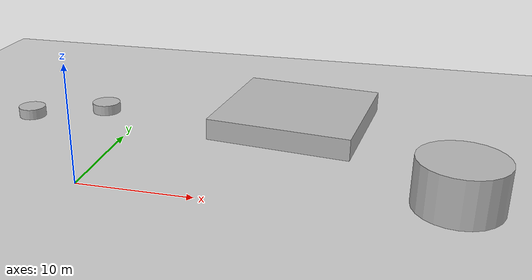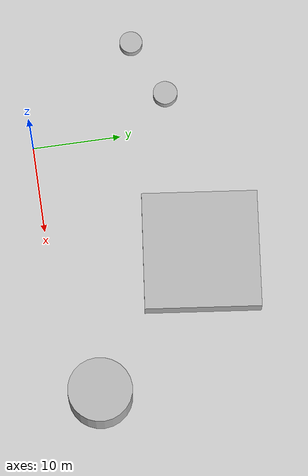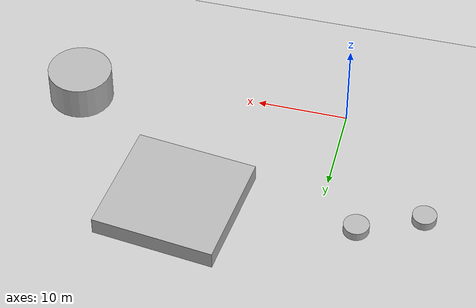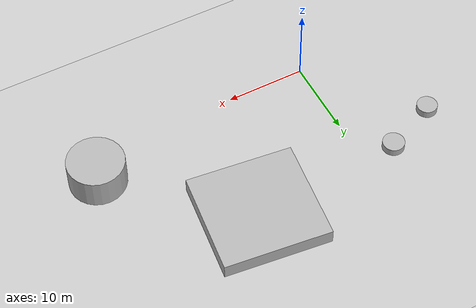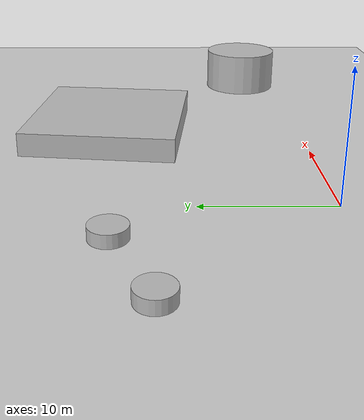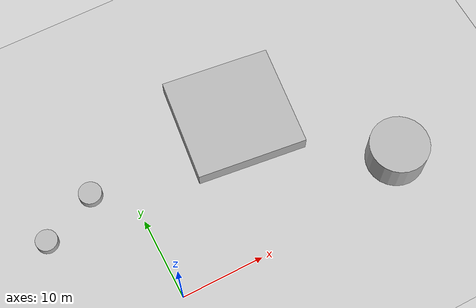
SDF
<sdf version='1.5'>
<world name="default">
  <include>
    <uri>model://sun</uri>
  </include>
  <include>
    <uri>model://ground_plane</uri>
  </include>

<model name="cyl00">
  <pose frame="">29.7 3.6 2 0 0 0</pose>
  <link name="cyl00link">
    <visual name="visual1">
      <geometry>
        <cylinder>
          <radius>3.5510561809129415</radius>
          <length>4.0</length>
        </cylinder>
      </geometry>
    </visual>
    <collision name="collision1">
      <geometry>
        <cylinder>
          <radius>3.5510561809129415</radius>
          <length>4.0</length>
        </cylinder>
      </geometry>
      <laser_retro>1000.0</laser_retro>
    </collision>
    <inertial>
      <inertia>
        <ixx>88854.22789016397</ixx>
        <iyy>88854.22789016397</iyy>
        <izz>124887.81129797151</izz>
        <ixy>0</ixy>
        <ixz>0</ixz>
        <iyz>0</iyz>
      </inertia>
      <pose frame="">0 0 0 0 0 0</pose>
      <mass>19807.741680883657</mass>
    </inertial>
  </link>
</model>

<model name="box00">
  <pose frame="">15.1 17 1 0 0 1.45492</pose>
  <link name="box00link">
    <visual name="visual1">
      <geometry>
        <box>
          <size>13 13.4 2</size>
        </box>
      </geometry>
    </visual>
    <collision name="collision1">
      <geometry>
        <box>
          <size>13 13.4 2</size>
        </box>
      </geometry>
      <laser_retro>500.0</laser_retro>
    </collision>
    <inertial>
      <inertia>
        <ixx>2664679.3333333316</ixx>
        <iyy>435499.9999999993</iyy>
        <izz>5059929.33333333</izz>
        <ixy>0</ixy>
        <ixz>0</ixz>
        <iyz>0</iyz>
      </inertia>
      <pose frame="">0 0 0 0 0 0</pose>
      <mass>174199.99999999988</mass>
    </inertial>
  </link>
</model>

<model name="cyl01">
  <pose frame="">-4.2 15.8 0.5 0 0 0</pose>
  <link name="cyl01link">
    <visual name="visual1">
      <geometry>
        <cylinder>
          <radius>1.3892443989449805</radius>
          <length>0.9999999999999974</length>
        </cylinder>
      </geometry>
    </visual>
    <collision name="collision1">
      <geometry>
        <cylinder>
          <radius>1.3892443989449805</radius>
          <length>0.9999999999999974</length>
        </cylinder>
      </geometry>
      <laser_retro>1000.0</laser_retro>
    </collision>
    <inertial>
      <inertia>
        <ixx>1715.4012186457555</ixx>
        <iyy>1715.4012186457555</iyy>
        <izz>2925.5296188391553</izz>
        <ixy>0</ixy>
        <ixz>0</ixz>
        <iyz>0</iyz>
      </inertia>
      <pose frame="">0 0 0 0 0 0</pose>
      <mass>3031.6369107141504</mass>
    </inertial>
  </link>
</model>

<model name="cyl02">
  <pose frame="">-10.9 12.8 0.5 0 0 0</pose>
  <link name="cyl02link">
    <visual name="visual1">
      <geometry>
        <cylinder>
          <radius>1.3038404810405297</radius>
          <length>0.9999999999999974</length>
        </cylinder>
      </geometry>
    </visual>
    <collision name="collision1">
      <geometry>
        <cylinder>
          <radius>1.3038404810405297</radius>
          <length>0.9999999999999974</length>
        </cylinder>
      </geometry>
      <laser_retro>1000.0</laser_retro>
    </collision>
    <inertial>
      <inertia>
        <ixx>1357.4298257385883</ixx>
        <iyy>1357.4298257385883</iyy>
        <izz>2269.800692218625</izz>
        <ixy>0</ixy>
        <ixz>0</ixz>
        <iyz>0</iyz>
      </inertia>
      <pose frame="">0 0 0 0 0 0</pose>
      <mass>2670.3537555513235</mass>
    </inertial>
  </link>
</model>

</world>
</sdf>
